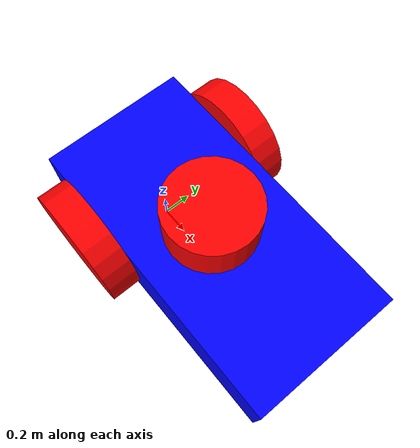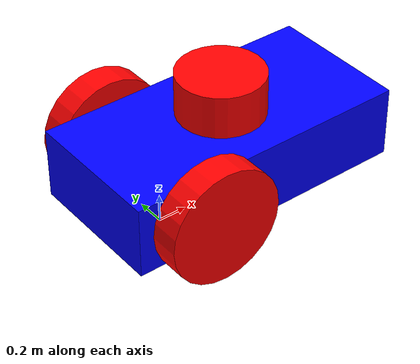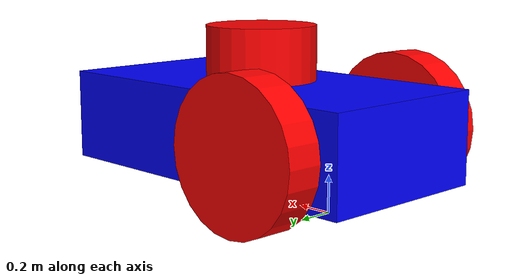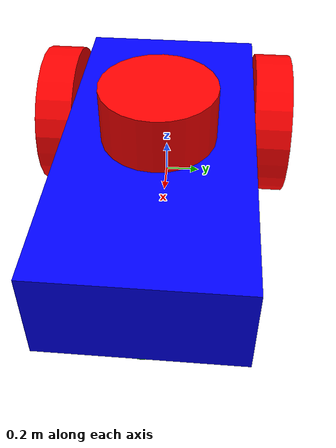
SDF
<?xml version="1.0" ?>
<sdf version="1.5">
    <model name='vehicle_blue' canonical_link='chassis'>
        <plugin
                filename="gz-sim-diff-drive-system"
                name="gz::sim::systems::DiffDrive">
            <left_joint>left_wheel_joint</left_joint>
            <right_joint>right_wheel_joint</right_joint>
            <wheel_separation>1.2</wheel_separation>
            <wheel_radius>0.4</wheel_radius>
            <odom_publish_frequency>30</odom_publish_frequency>
            <update_rate>50</update_rate>
            <topic>cmd_vel</topic>
            <sim_time>true</sim_time>
            <real_time>true</real_time>
            <real_time_factor>true</real_time_factor>
        </plugin>

        <link name='chassis'>
            <pose relative_to='__model__'>0.5 0 0.4 0 0 0</pose>
            <inertial> <!--inertial properties of the link mass, inertia matix-->
                <mass>1.14395</mass>
                <inertia>
                    <ixx>0.095329</ixx>
                    <ixy>0</ixy>
                    <ixz>0</ixz>
                    <iyy>0.381317</iyy>
                    <iyz>0</iyz>
                    <izz>0.476646</izz>
                </inertia>
            </inertial>
            <visual name='visual'>
                <geometry>
                    <box>
                        <size>2.0 1.0 0.5</size>
                    </box>
                </geometry>
                <!--let's add color to our link-->
                <material>
                    <ambient>0.0 0.0 1.0 1</ambient>
                    <diffuse>0.0 0.0 1.0 1</diffuse>
                    <specular>0.0 0.0 1.0 1</specular>
                </material>
            </visual>
            <collision name='collision'>
                <geometry>
                    <box>
                        <size>2.0 1.0 0.5</size>
                    </box>
                </geometry>
            </collision>
        </link>

        <link name='left_wheel'>
            <pose relative_to="chassis">-0.5 0.6 0 -1.5707 0 0</pose>
            <inertial>
                <mass>1</mass>
                <inertia>
                    <ixx>0.043333</ixx>
                    <ixy>0</ixy>
                    <ixz>0</ixz>
                    <iyy>0.043333</iyy>
                    <iyz>0</iyz>
                    <izz>0.08</izz>
                </inertia>
            </inertial>
            <visual name='visual'>
                <geometry>
                    <cylinder>
                        <radius>0.4</radius>
                        <length>0.2</length>
                    </cylinder>
                </geometry>
                <material>
                    <ambient>1.0 0.0 0.0 1</ambient>
                    <diffuse>1.0 0.0 0.0 1</diffuse>
                    <specular>1.0 0.0 0.0 1</specular>
                </material>
            </visual>
            <collision name='collision'>
                <geometry>
                    <cylinder>
                        <radius>0.4</radius>
                        <length>0.2</length>
                    </cylinder>
                </geometry>
            </collision>
        </link>
        <link name='right_wheel'>
            <pose relative_to="chassis">-0.5 -0.6 0 -1.5707 0 0</pose> <!--angles are in radian-->
            <inertial>
                <mass>1</mass>
                <inertia>
                    <ixx>0.043333</ixx>
                    <ixy>0</ixy>
                    <ixz>0</ixz>
                    <iyy>0.043333</iyy>
                    <iyz>0</iyz>
                    <izz>0.08</izz>
                </inertia>
            </inertial>
            <visual name='visual'>
                <geometry>
                    <cylinder>
                        <radius>0.4</radius>
                        <length>0.2</length>
                    </cylinder>
                </geometry>
                <material>
                    <ambient>1.0 0.0 0.0 1</ambient>
                    <diffuse>1.0 0.0 0.0 1</diffuse>
                    <specular>1.0 0.0 0.0 1</specular>
                </material>
            </visual>
            <collision name='collision'>
                <geometry>
                    <cylinder>
                        <radius>0.4</radius>
                        <length>0.2</length>
                    </cylinder>
                </geometry>
            </collision>
        </link>

        <frame name="caster_frame" attached_to='chassis'>
            <pose>0.8 0 -0.2 0 0 0</pose>
        </frame>

        <!--caster wheel-->
        <link name='caster'>
            <pose relative_to='caster_frame'/>
            <inertial>
                <mass>1</mass>
                <inertia>
                    <ixx>0.016</ixx>
                    <ixy>0</ixy>
                    <ixz>0</ixz>
                    <iyy>0.016</iyy>
                    <iyz>0</iyz>
                    <izz>0.016</izz>
                </inertia>
            </inertial>
            <visual name='visual'>
                <geometry>
                    <sphere>
                        <radius>0.2</radius>
                    </sphere>
                </geometry>
                <material>
                    <ambient>0.0 1 0.0 1</ambient>
                    <diffuse>0.0 1 0.0 1</diffuse>
                    <specular>0.0 1 0.0 1</specular>
                </material>
            </visual>
            <collision name='collision'>
                <geometry>
                    <sphere>
                        <radius>0.2</radius>
                    </sphere>
                </geometry>
            </collision>
        </link>

        <joint name='left_wheel_joint' type='revolute'>
            <pose relative_to='left_wheel'/>
            <parent>chassis</parent>
            <child>left_wheel</child>
            <axis>
                <xyz expressed_in='__model__'>0 1 0
                </xyz> <!--can be defined as any frame or even arbitrary frames-->
                <limit>
                    <lower>-1.79769e+308</lower>    <!--negative infinity-->
                    <upper>1.79769e+308</upper>     <!--positive infinity-->
                </limit>
            </axis>
        </joint>
        <joint name='right_wheel_joint' type='revolute'>
            <pose relative_to='right_wheel'/>
            <parent>chassis</parent>
            <child>right_wheel</child>
            <axis>
                <xyz expressed_in='__model__'>0 1 0</xyz>
                <limit>
                    <lower>-1.79769e+308</lower>    <!--negative infinity-->
                    <upper>1.79769e+308</upper>     <!--positive infinity-->
                </limit>
            </axis>
        </joint>
        <joint name='caster_wheel' type='ball'>
            <parent>chassis</parent>
            <child>caster</child>
        </joint>

        <link name="lidar_frame">
            <pose relative_to="chassis">0 0 0.4 0 0 0</pose>
            <visual name='visual'>
                <geometry>
                    <cylinder>
                        <radius>0.3</radius>
                        <length>0.3</length>
                    </cylinder>
                </geometry>
                <material>
                    <ambient>1 0 0 1</ambient>
                    <diffuse>1 0 0 1</diffuse>
                    <specular>1 0 0 1</specular>
                </material>
            </visual>
            <collision name='collision'>
                <geometry>
                    <cylinder>
                        <radius>0.3</radius>
                        <length>0.3</length>
                    </cylinder>
                </geometry>
            </collision>
            <inertial>
                <mass>1</mass>
                <inertia>
                    <ixx>0.016</ixx>
                    <ixy>0</ixy>
                    <ixz>0</ixz>
                    <iyy>0.016</iyy>
                    <iyz>0</iyz>
                    <izz>0.016</izz>
                </inertia>
            </inertial>

            <sensor name='gpu_lidar' type='gpu_lidar'>"
                <pose relative_to='lidar_frame'>0 0 0 0 0 0</pose>
                <topic>lidar</topic>
                <update_rate>50</update_rate>
                <ray>
                    <scan>
                        <horizontal>
                            <samples>640</samples>
                            <resolution>1</resolution>
                            <min_angle>-1.396263</min_angle>
                            <max_angle>1.396263</max_angle>
                        </horizontal>
                        <vertical>
                            <samples>1</samples>
                            <resolution>0.01</resolution>
                            <min_angle>0</min_angle>
                            <max_angle>0</max_angle>
                        </vertical>
                    </scan>
                    <range>
                        <min>0.08</min>
                        <max>10.0</max>
                        <resolution>0.01</resolution>
                    </range>
                </ray>
                <always_on>1</always_on>
                <visualize>true</visualize>
            </sensor>

        </link>
        <joint name="lidar_joint" type="fixed">
            <parent>chassis</parent>
            <child>lidar_frame</child>
        </joint>

        <plugin
                filename="gz-sim-sensors-system"
                name="gz::sim::systems::Sensors">
            <render_engine>ogre2</render_engine>
            <sim_time>true</sim_time>
            <real_time>true</real_time>
            <real_time_factor>true</real_time_factor>
        </plugin>
        <plugin filename="gz-sim-joint-state-publisher-system"
                name="gz::sim::systems::JointStatePublisher">
            <topic>joint_states</topic>
            <joint_name>left_wheel_joint</joint_name>
            <joint_name>right_wheel_joint</joint_name>
            <sim_time>true</sim_time>
            <real_time>true</real_time>
            <real_time_factor>true</real_time_factor>
        </plugin>

    </model>
</sdf>
